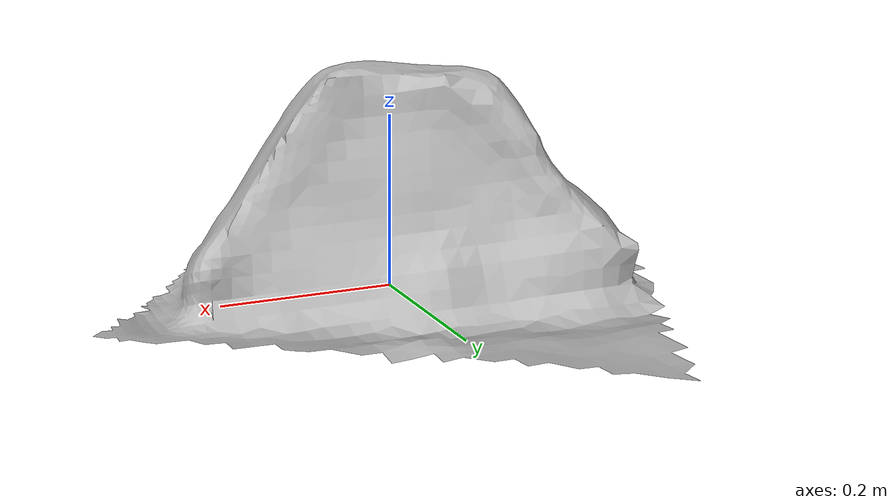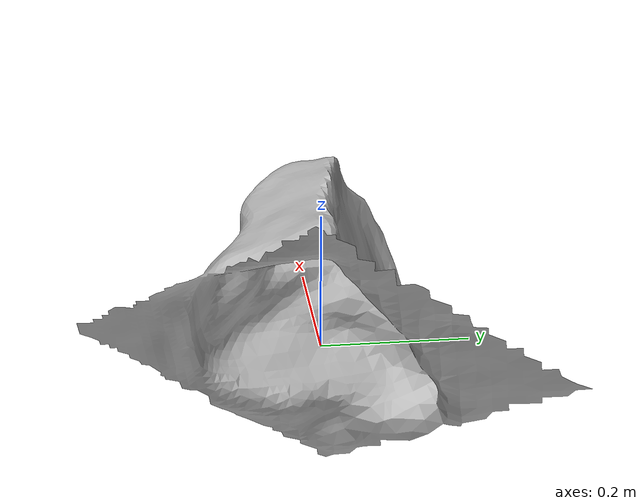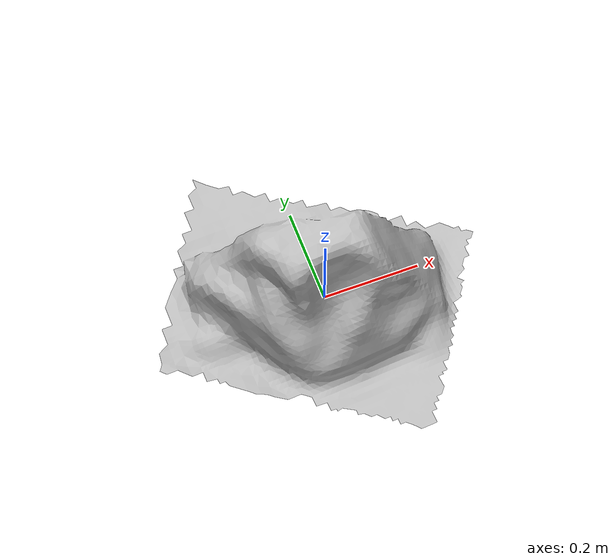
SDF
<?xml version='1.0'?>
<sdf version="1.4">
<model name="rock_4">
  <pose>0 0 0 0 0 0</pose>
  <static>true</static>
    <link name="link">
      <collision name="collision">
          <geometry>
            <mesh><uri>model://rock_4/meshes/rock_4.dae</uri></mesh>
          </geometry>
      </collision>
        <visual name="visual">
          <geometry>
            <mesh><uri>model://rock_4/meshes/rock_4.dae</uri></mesh>
          </geometry>
        </visual>
    </link>
  </model>
</sdf>
